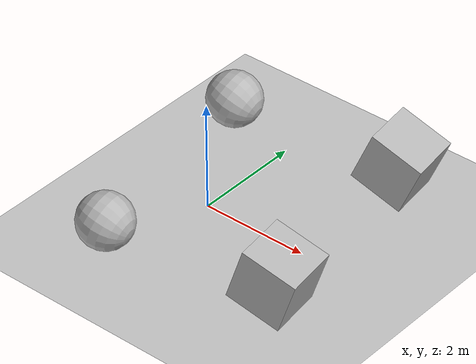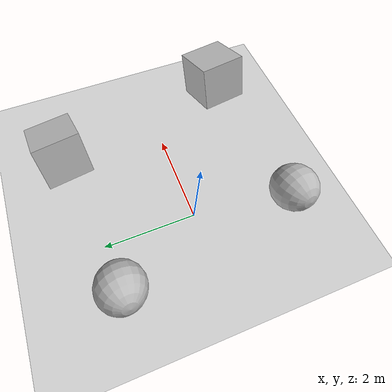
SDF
<sdf version="1.7">
 <world name="default">
  <light name="sun" type="directional">
   <pose>0 0 10 0 -0 0</pose>
   <diffuse>0.8 0.8 0.8 1</diffuse>
   <specular>0.2 0.2 0.2 1</specular>
   <attenuation>
    <range>1000</range>
    <constant>0.9</constant>
    <linear>0.01</linear>
    <quadratic>0.001</quadratic>
   </attenuation>
   <direction>-0.5 0.1 -0.9</direction>
   <spot><inner_angle>0</inner_angle><outer_angle>0</outer_angle><falloff>0</falloff></spot>
  </light>
  <model name="ground_plane">
   <static>1</static>
   <link name="link">
    <collision name="collision">
     <geometry><plane><normal>0 0 1</normal><size>100 100</size></plane></geometry>
     <surface>
      <contact><collide_bitmask>65535</collide_bitmask></contact>
      <friction><ode><mu>100</mu><mu2>50</mu2></ode></friction>
     </surface>
    </collision>
    <visual name="visual">
     <cast_shadows>0</cast_shadows>
     <geometry><plane><normal>0 0 1</normal><size>100 100</size></plane></geometry>
     <material>
      <script><uri>file://media/materials/scripts/gazebo.material</uri><name>Gazebo/Grey</name></script>
     </material>
    </visual>
   </link>
  </model>
  <gravity>0 0 -9.8</gravity>
  <magnetic_field>6e-06 2.3e-05 -4.2e-05</magnetic_field>
  <atmosphere type="adiabatic"/>
  <physics type="ode">
   <max_step_size>0.001</max_step_size>
   <real_time_factor>1</real_time_factor>
   <real_time_update_rate>1000</real_time_update_rate>
  </physics>
  <scene><ambient>0.4 0.4 0.4 1</ambient><background>0.7 0.7 0.7 1</background><shadows>1</shadows></scene>
  <spherical_coordinates>
   <surface_model>EARTH_WGS84</surface_model>
   <latitude_deg>0</latitude_deg>
   <longitude_deg>0</longitude_deg>
   <elevation>0</elevation>
   <heading_deg>0</heading_deg>
  </spherical_coordinates>
  <light name="sun" type="directional">
   <pose>-1.95573 -1.23693 10 0 -0 0</pose>
   <diffuse>0.8 0.8 0.8 1</diffuse>
   <specular>0.2 0.2 0.2 1</specular>
   <attenuation>
    <range>1000</range>
    <constant>0.9</constant>
    <linear>0.01</linear>
    <quadratic>0.001</quadratic>
   </attenuation>
   <direction>-0.5 0.1 -0.9</direction>
  </light>
  <model name="model_00">
   <pose>1.725 2.25254 -0.464046 0 -1.176 0.134011</pose>
   <link name="link_00">
    <pose>0 0 3 0 -0 0</pose>
    <collision name="collision_00"><geometry><sphere><radius>0.5</radius></sphere></geometry></collision>
    <visual name="visual_00"><geometry><sphere><radius>0.5</radius></sphere></geometry></visual>
    <inertial>
     <inertia><ixx>1</ixx><ixy>0</ixy><ixz>0</ixz><iyy>1</iyy><iyz>0</iyz><izz>1</izz></inertia>
     <mass>1</mass>
    </inertial>
   </link>
   <frame name="model_01::__model__" attached_to="model_01::link_01">
    <pose relative_to="__model__">1 0 0 0 -0 0</pose>
   </frame>
   <link name="model_01::link_01">
    <pose relative_to="model_01::__model__">0.25 0 0 0 -0 0</pose>
    <collision name="collision_01"><geometry><box><size>1 1 1</size></box></geometry></collision>
    <visual name="visual_01"><geometry><box><size>1 1 1</size></box></geometry></visual>
    <inertial>
     <inertia><ixx>1</ixx><ixy>0</ixy><ixz>0</ixz><iyy>1</iyy><iyz>0</iyz><izz>1</izz></inertia>
     <mass>1</mass>
    </inertial>
   </link>
   <joint name="joint_00" type="revolute">
    <parent>link_00</parent>
    <child>model_01::link_01</child>
    <axis>
     <xyz>0 1 0</xyz>
     <limit><lower>-1e+16</lower><upper>1e+16</upper></limit>
     <dynamics><spring_reference>0</spring_reference><spring_stiffness>0</spring_stiffness></dynamics>
    </axis>
   </joint>
  </model>
  <model name="model_00_0">
   <pose>2.43867 -1.64586 -0.227155 -6.6e-05 -1.26017 0.13408</pose>
   <link name="link_00">
    <pose>0 0 3 0 -0 0</pose>
    <collision name="collision_00"><geometry><sphere><radius>0.5</radius></sphere></geometry></collision>
    <visual name="visual_00"><geometry><sphere><radius>0.5</radius></sphere></geometry></visual>
    <inertial>
     <inertia><ixx>1</ixx><ixy>0</ixy><ixz>0</ixz><iyy>1</iyy><iyz>0</iyz><izz>1</izz></inertia>
     <mass>1</mass>
    </inertial>
   </link>
   <model name="model_01">
    <pose>1 0 0 0 -0 0</pose>
    <link name="link_01">
     <pose>0.25 0 0 0 -0 0</pose>
     <collision name="collision_01"><geometry><box><size>1 1 1</size></box></geometry></collision>
     <visual name="visual_01"><geometry><box><size>1 1 1</size></box></geometry></visual>
     <inertial>
      <inertia><ixx>1</ixx><ixy>0</ixy><ixz>0</ixz><iyy>1</iyy><iyz>0</iyz><izz>1</izz></inertia>
      <mass>1</mass>
     </inertial>
    </link>
   </model>
   <joint name="joint_00" type="revolute">
    <parent>link_00</parent>
    <child>model_01::link_01</child>
    <axis>
     <xyz>0 1 0</xyz>
     <limit><lower>-1e+16</lower><upper>1e+16</upper></limit>
     <dynamics><spring_reference>0</spring_reference><spring_stiffness>0</spring_stiffness></dynamics>
    </axis>
   </joint>
  </model>
 </world>
</sdf>
